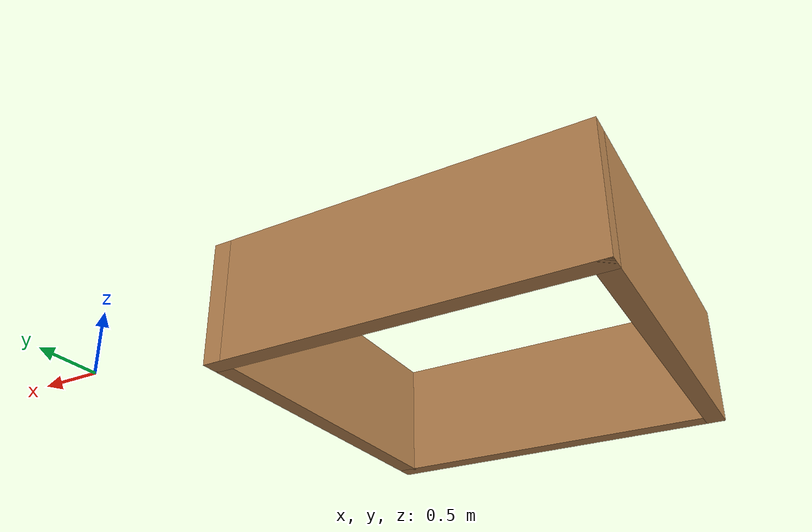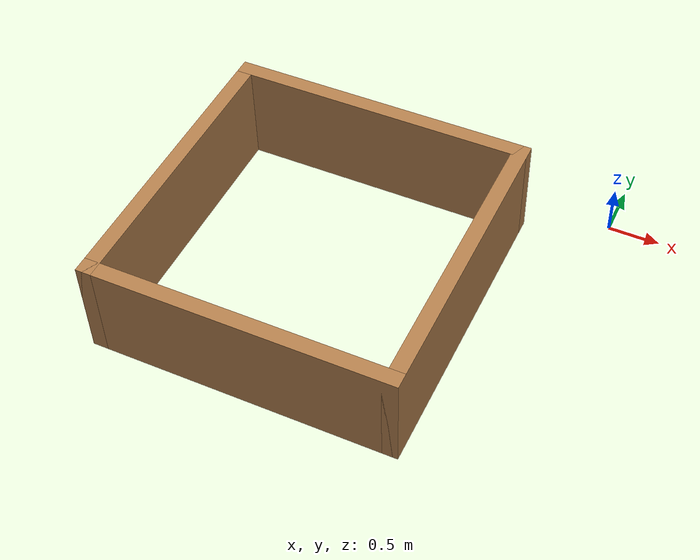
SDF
<?xml version='1.0'?>
<sdf version='1.6'>
  <model name='robot_env'>
    <pose frame=''>-2.277 -1.781 0 0 -0 0</pose>
    <link name='Wall_11'>
      <collision name='Wall_11_Collision'>
        <geometry>
          <box>
            <size>3 0.15 1</size>
          </box>
        </geometry>
        <pose frame=''>0 0 0.5 0 -0 0</pose>
      </collision>
      <visual name='Wall_11_Visual'>
        <pose frame=''>0 0 0.5 0 -0 0</pose>
        <geometry>
          <box>
            <size>3 0.15 1</size>
          </box>
        </geometry>
        <material>
          <script>
            <uri>file://media/materials/scripts/gazebo.material</uri>
            <name>Gazebo/Wood</name>
          </script>
          <ambient>1 1 1 1</ambient>
        </material>
        <meta>
          <layer>0</layer>
        </meta>
      </visual>
      <pose frame=''>0 1.425 0 0 -0 3.14159</pose>
    </link>
    <link name='Wall_12'>
      <collision name='Wall_12_Collision'>
        <geometry>
          <box>
            <size>3 0.15 1</size>
          </box>
        </geometry>
        <pose frame=''>0 0 0.5 0 -0 0</pose>
      </collision>
      <visual name='Wall_12_Visual'>
        <pose frame=''>0 0 0.5 0 -0 0</pose>
        <geometry>
          <box>
            <size>3 0.15 1</size>
          </box>
        </geometry>
        <material>
          <script>
            <uri>file://media/materials/scripts/gazebo.material</uri>
            <name>Gazebo/Wood</name>
          </script>
          <ambient>1 1 1 1</ambient>
        </material>
        <meta>
          <layer>0</layer>
        </meta>
      </visual>
      <pose frame=''>-1.425 -0 0 0 -0 -1.5708</pose>
    </link>
    <link name='Wall_13'>
      <collision name='Wall_13_Collision'>
        <geometry>
          <box>
            <size>3 0.15 1</size>
          </box>
        </geometry>
        <pose frame=''>0 0 0.5 0 -0 0</pose>
      </collision>
      <visual name='Wall_13_Visual'>
        <pose frame=''>0 0 0.5 0 -0 0</pose>
        <geometry>
          <box>
            <size>3 0.15 1</size>
          </box>
        </geometry>
        <material>
          <script>
            <uri>file://media/materials/scripts/gazebo.material</uri>
            <name>Gazebo/Wood</name>
          </script>
          <ambient>1 1 1 1</ambient>
        </material>
        <meta>
          <layer>0</layer>
        </meta>
      </visual>
      <pose frame=''>0 -1.425 0 0 -0 0</pose>
    </link>
    <link name='Wall_14'>
      <collision name='Wall_14_Collision'>
        <geometry>
          <box>
            <size>3 0.15 1</size>
          </box>
        </geometry>
        <pose frame=''>0 0 0.5 0 -0 0</pose>
      </collision>
      <visual name='Wall_14_Visual'>
        <pose frame=''>0 0 0.5 0 -0 0</pose>
        <geometry>
          <box>
            <size>3 0.15 1</size>
          </box>
        </geometry>
        <material>
          <script>
            <uri>file://media/materials/scripts/gazebo.material</uri>
            <name>Gazebo/Wood</name>
          </script>
          <ambient>1 1 1 1</ambient>
        </material>
        <meta>
          <layer>0</layer>
        </meta>
      </visual>
      <pose frame=''>1.425 -0 0 0 -0 1.5708</pose>
    </link>
    <static>1</static>
  </model>
</sdf>
